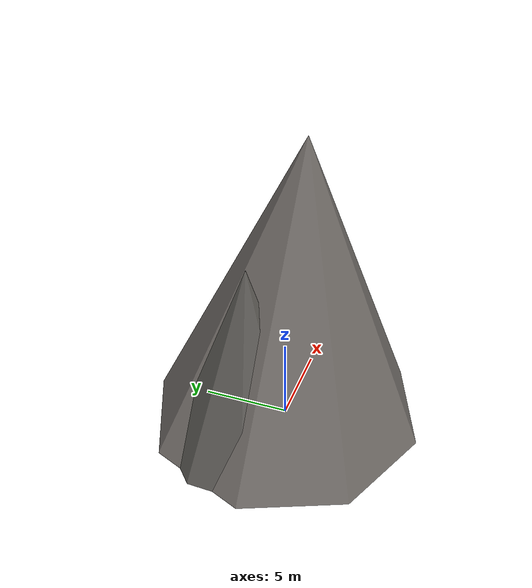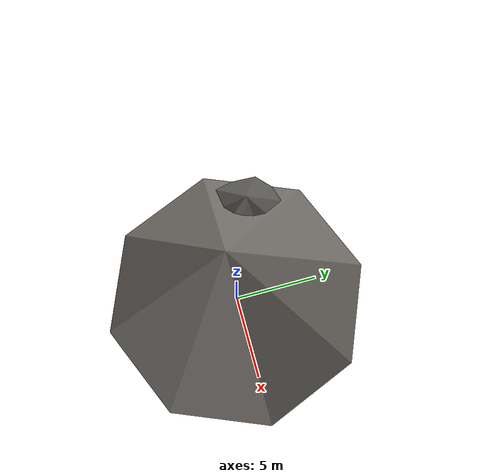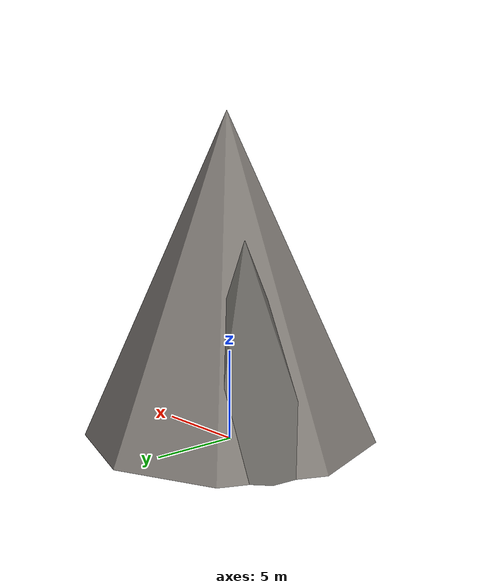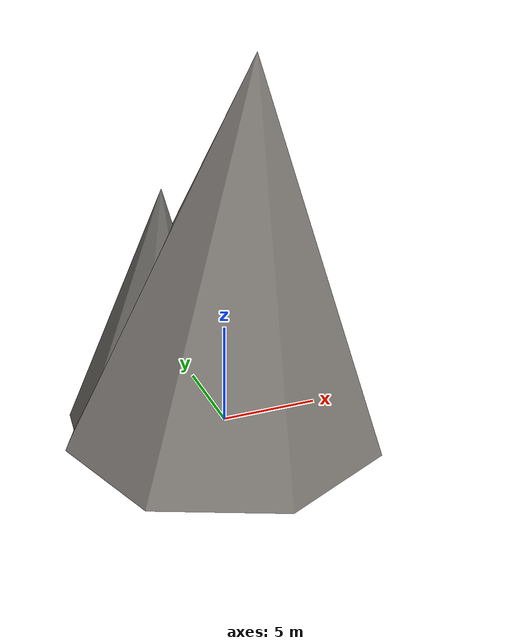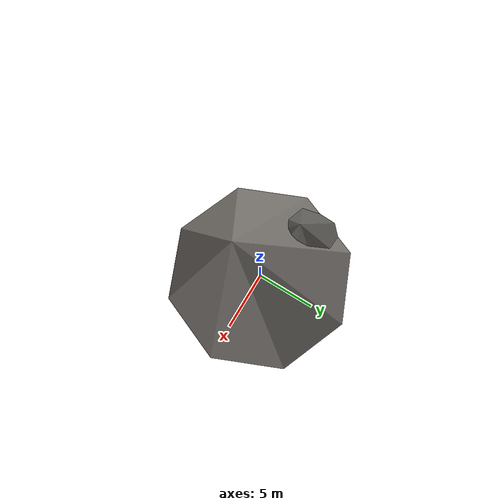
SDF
<?xml version="1.0"?>
<sdf version="1.6">
  <model name="tracking_mountain">
    <static>true</static>
    <link name="rock">
      <!-- Collision is deliberately cheap; the two tank lanes never touch it. -->
      <collision name="base_collision">
        <pose>0 0 1.5 0 0 0</pose>
        <geometry><cylinder><radius>8.0</radius><length>3.0</length></cylinder></geometry>
      </collision>
      <visual name="main_peak">
        <geometry><mesh><uri>model://tracking_mountain/meshes/pointed_rock.stl</uri></mesh></geometry>
        <material><ambient>0.28 0.27 0.26 1</ambient><diffuse>0.51 0.49 0.47 1</diffuse><specular>0.05 0.05 0.05 1</specular></material>
      </visual>
      <visual name="side_peak">
        <pose>-3.4 1.4 0 0 0 0.35</pose>
        <geometry><mesh><uri>model://tracking_mountain/meshes/pointed_rock.stl</uri><scale>0.53 0.53 0.66</scale></mesh></geometry>
        <material><ambient>0.24 0.23 0.22 1</ambient><diffuse>0.43 0.42 0.40 1</diffuse><specular>0.04 0.04 0.04 1</specular></material>
      </visual>
    </link>
  </model>
</sdf>
